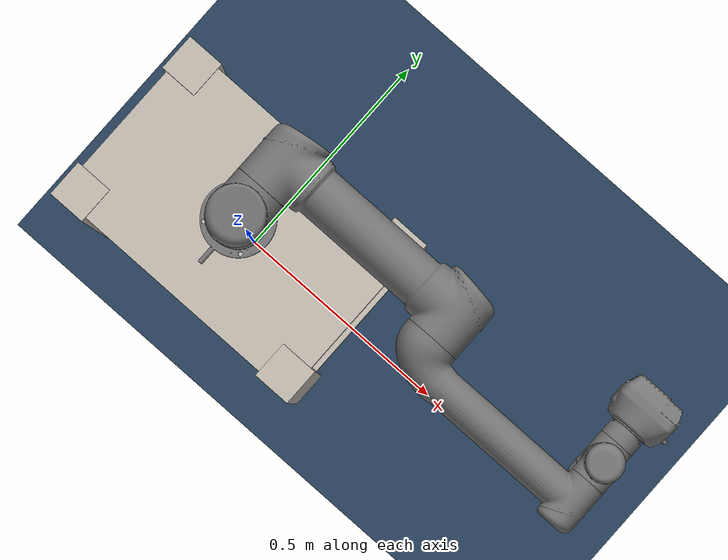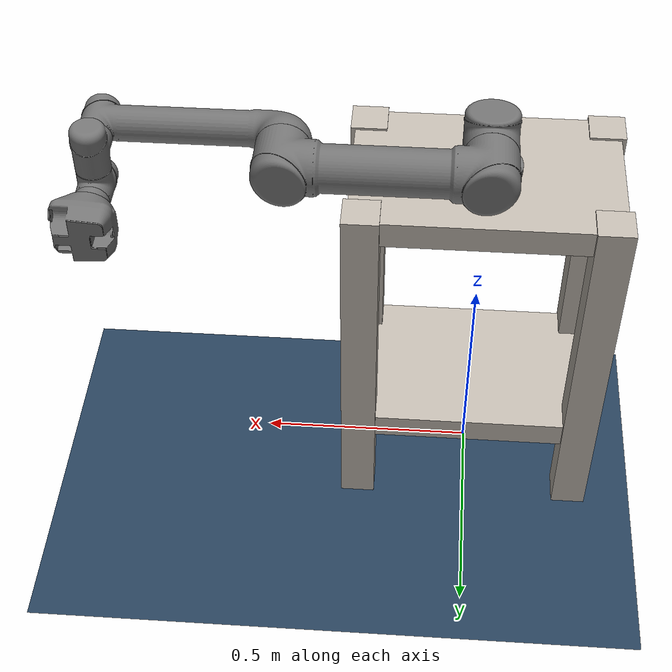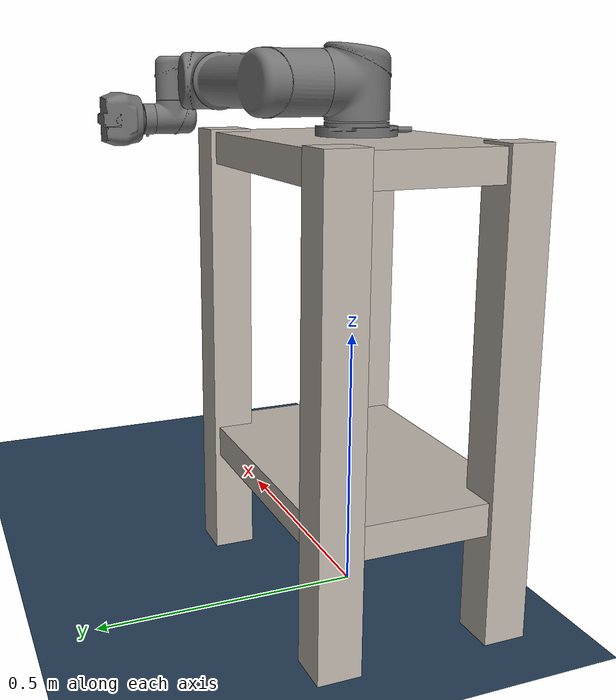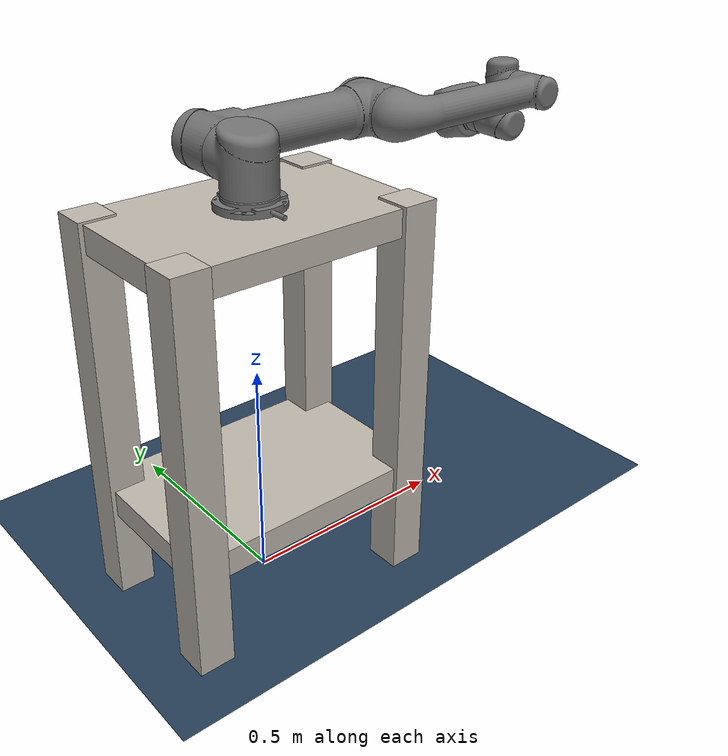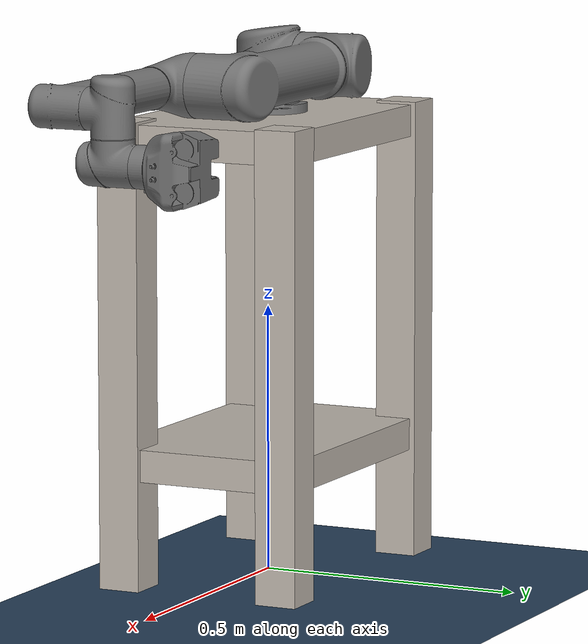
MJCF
<!--Link  MuJoCo modeling: http://www.mujoco.org/book/modeling.html-->

<mujoco model="ur5gripper">
    <compiler angle="radian"
              inertiafromgeom="false"
              texturedir="textures/"
              meshdir="mesh/visual/"/>
    <!--angle设置角度单位
    inertiafromgeom选择每个物体的关系和质量由其附着在其上的几何图形推断出来，覆盖惯性元件指定的任何值
    texturedir与meshdir指明文件路径-->
    <option timestep="2e-3"
            iterations="10"
            tolerance="1e-10"
            impratio="20"/>
    <!--timestep仿真时间不长
    iterations约束解算器最大迭代次数
    tolerance用于提前终止迭代器的阈值
    impratio摩擦力与正交力之比，也就是摩擦系数
    -->
    <size njmax="600"
          nconmax="150"
          nstack="300000"/>
    <!--njmax约束雅可比矩阵的最大行数
    nconmax可处理的最大接触点，包括有摩擦与无摩擦
    nstack预分配堆栈大小
    -->
    <default>
        <site rgba="0.8 0.6 0.7 0.3" type="ellipsoid" group="3"/>
        <geom contype='1' conaffinity='1' condim='4'  margin="1e-3" solref=".01 1" solimp=".99 .99 .01" />
        <joint armature="0.01" damping=".1"/>
        <default class="UR5">
            <joint damping='65'/>
        </default>
        <default class="UR5e">
            <joint damping='45'/>
        </default>
        <default class="GRIPPER">
            <joint damping='5'/>
        </default>
    </default>
    <!--site兴趣点，用于放东西
    geom用于链接到body，确定实体的外观和碰撞属性,contype与conaffinity用于碰撞，
    joint里面添加了转子惯性以及阻尼
    -->
    <visual>
        <map fogstart="3" fogend="5" znear="0.05"/>
        <quality shadowsize="2048"/>
        <scale framelength="0.1"
               framewidth="0.005"
               contactwidth="0.1"
               contactheight="0.005"
               forcewidth="0.01"
               />
    </visual>
    <!--map影响其视觉效果
    quality为渲染质量
    scale为装饰对象空间范围
    -->
    <!--Assets-->
    <asset>
        <!--Meshes-->
        <mesh name="base"           file="base.stl"     />
        <mesh name="shoulder"       file="shoulder.stl" />
        <mesh name="upperarm"       file="upperarm.stl" />
        <mesh name="forearm"        file="forearm.stl"  />
        <mesh name="wrist1"         file="wrist1.stl"   />
        <mesh name="wrist2"         file="wrist2.stl"   />
        <mesh name="wrist3"         file="wrist3.stl"   />
        <mesh name="gripperpalm"    file="palm.STL"     />
        <mesh name="link_0"         file="link_0.STL"   />
        <mesh name="link_1"         file="link_1.STL"   />
        <mesh name="link_2"         file="link_2.STL"   />
        <mesh name="link_3"         file="link_3.STL"   />
        <!--Textures-->
        <texture name="ur5_tex"     type="2d"       builtin="flat" height="32" width="32" rgb1="0.45 0.45 0.45" />
        <texture name="gripper_tex" type="2d"       builtin="flat" height="32" width="32" rgb1="0.45 0.45 0.45" rgb2="0 0 0"/>
        <texture name="bench_tex"   type="2d"       builtin="flat" height="32" width="32" rgb1="0.7 0.7 0.7" />
        <texture name="sky_tex"     type="skybox"   builtin="gradient" width="100" height="100" rgb1="1 1 1" rgb2="0.3 0.3 0.8" />
        <texture name="texgeom"     type="cube"     builtin="flat" mark="cross" width="127" height="1278" rgb1="0.8 0.6 0.4" rgb2="0.8 0.6 0.4" markrgb="1 1 1" random="0.01" />
        <texture name="floor_tex"   type="2d"        builtin="checker" rgb1=".2 .3 .4" rgb2=".1 .2 .3" width="100" height="100" />
        <texture name="wood"        type="cube"     file="wood2.png"/>
        <texture name="metal"        type="cube"     file="metal2.png"/>
        <!--Materials-->
        <material name="ur5_mat"        texture="ur5_tex"   shininess="0.9" specular="0.75" reflectance="0.3"/>
        <material name="gripper_mat"    texture="gripper_tex"   shininess="0.9" specular="0.75" reflectance="0.4"/>
        <material name='floor_mat'      texture="floor_tex"  shininess="0.8" texrepeat="10 10" specular="0.7"  reflectance="0.5" />
        <material name='geom'           texture="texgeom"   texuniform="true" />
        <material name="bench_mat"      texture="metal"   shininess="0.1" specular="0.5" reflectance="0.2"/>
        <material name="tablecube"      texture="wood" rgba=".8 .8 .8 1"/>
    </asset>
    <!--文件指定、材料-->
    <!--Contacts-->
    <contact>
        <exclude body1="box_link" body2="base_link"/>
		<exclude body1="base_link" body2="shoulder_link"/>
		<exclude body1="shoulder_link" body2="upper_arm_link"/>
        <exclude body1="upper_arm_link" body2="forearm_link"/>
		<exclude body1="forearm_link" body2="wrist_1_link"/>
		<exclude body1="wrist_1_link" body2="wrist_2_link"/>
        <exclude body1="wrist_2_link" body2="wrist_3_link"/>
        <exclude body1="wrist_3_link" body2="gripperpalm"/>
        <exclude body1="ee_link" body2="wrist_3_link"/>
        <exclude body1="ee_link" body2="gripperpalm"/>
    </contact>
    <!--碰撞检测中排除的实体对，即实际相连的物体-->
    <!--MODEL DESCRIPTION-->
    <worldbody>
        <!--Lighting parameters-->
        <light name="light3" mode="targetbody" target="box_link" directional="true" pos="1 1 3" />
        <!--Camera parameters-->
        <camera name="main1" mode="fixed" target="gripperpalm" pos="2 2 2.7" axisangle="2 2 -2 1"/>
        <!--Floor Property-->
        <geom name='floor' material="floor_mat" pos='0 0 0' size='2.5 2.5 0.1'  type='plane' />
        <!--mocap-->
        <!--Robot UR5-->
        <body name="box_link" pos="0 0 0.435">
            <!--bench-->
            <geom size=".29 .19 .03" pos ="0 0 0.4" type="box" material="bench_mat"/>
            <geom size=".29 .19 .03" pos ="0 0 -0.2" type="box" material="bench_mat"/>
            <geom size=".04 .04 .435" pos =".26 .16 0" type="box" material="bench_mat"/>
            <geom size=".04 .04 .435" pos ="-.26 .16 0" type="box" material="bench_mat"/>
            <geom size=".04 .04 .435" pos =".26 -.16 0" type="box" material="bench_mat"/>
            <geom size=".04 .04 .435" pos ="-.26 -.16 0" type="box" material="bench_mat"/>
            <inertial pos="0 0 0" mass="1000" diaginertia="0 0 0" />
            <!--ur5-->
            <body name="base_link" pos="0 0 0.435">
                <inertial pos="0 0 0" quat="0.5 0.5 -0.5 0.5" mass="4" diaginertia="0.0072 0.00443333 0.00443333" />
                <geom type="mesh"  mesh="base" material="ur5_mat"/>
                <body name="shoulder_link" pos="0 0 0.089159">
                    <inertial pos="0 0 0" mass="3.7" diaginertia="0.0102675 0.0102675 0.00666" />
                    <joint name="shoulder_pan_joint" class="UR5" pos="0 0 0" axis="0 0 1" limited="true" range="-3.14159 3.14159" />
                    <geom type="mesh"  mesh="shoulder" material="ur5_mat"/>
                    <body name="upper_arm_link" pos="0 0.13585 0" quat="0.707107 0 0.707107 0">
                        <inertial pos="0 0 0.28" mass="8.393" diaginertia="0.226891 0.226891 0.0151074" />
                        <joint name="shoulder_lift_joint" class="UR5" pos="0 0 0" axis="0 1 0" limited="true" range="-3.14159 0" /> <!--Range= -3.14159 3.14159-->
                        <geom type="mesh"  mesh="upperarm" material="ur5_mat"/>
                        <body name="forearm_link" pos="0 -0.1197 0.425">
                            <inertial pos="0 0 0.25" mass="2.275" diaginertia="0.0494433 0.0494433 0.004095" />
                            <joint name="elbow_joint" class="UR5" pos="0 0 0" axis="0 1 0" limited="true" range="-3.14159 3.14159" />
                            <geom type="mesh"  mesh="forearm" material="ur5_mat"/>
                            <body name="wrist_1_link" pos="0 0 0.39225" quat="0.707107 0 0.707107 0">
                                <inertial pos="0 0 0" quat="0.5 0.5 -0.5 0.5" mass="1.219" diaginertia="0.21942 0.111173 0.111173" />
                                <joint name="wrist_1_joint" class="UR5e" pos="0 0 0" axis="0 1 0" limited="true" range="-3.14159 3.14159" />
                                <geom type="mesh"  mesh="wrist1" material="ur5_mat"/>
                                <body name="wrist_2_link" pos="0 0.093 0">
                                    <inertial pos="0 0 0" quat="0.5 0.5 -0.5 0.5" mass="1.219" diaginertia="0.21942 0.111173 0.111173" />
                                    <joint name="wrist_2_joint" class="UR5e" pos="0 0 0" axis="0 0 1" limited="true" range="-3.14159 3.14159" />
                                    <geom type="mesh"  mesh="wrist2" material="ur5_mat"/>
                                    <body name="wrist_3_link" pos="0 0 0.09465">
                                        <inertial pos="0 0 0" quat="0.5 0.5 -0.5 0.5" mass="0.1879" diaginertia="0.033822 0.0171365 0.0171365" />
                                        <joint name="wrist_3_joint" class="UR5e" pos="0 0 0" axis="0 1 0" limited="true" range="-3.14159 3.14159" />
                                        <geom type="mesh"  mesh="wrist3" material="ur5_mat"/>
                                        <body name="ee_link" pos="0 0.0823 0" quat="0.707107 0 0 0.707107">
                                            <inertial pos="-0.01 0 0" mass="0.001" diaginertia="1.66667e-08 1.66667e-08 1.66667e-08" />
                                            <geom size="0.005 0.005 0.005" pos="-0.01 0 0" type="box" />
                                        </body>
                                        <!--GRIPPER-->
                                        <body name="tool0" pos="0 0.0823 0" quat="0.707107 -0.707107 0 0">
                                            <inertial pos="0 0.0823 0" quat="0.707107 -0.707107 0 0" mass="0" diaginertia="0 0 0" />
                                            <body name="gripperpalm" pos="0 0 0.0423" quat="0.707107 0.707107 0 0">
                                                <site name="gripperpalm" pos="0 0.05 0" size="0.035 0.0055 0.035"/>
                                                <inertial pos="0 0 0" mass="1.3" diaginertia="0.0035 0.0035 0.0035" />
                                                <geom type="mesh"  mesh="gripperpalm" material="gripper_mat"/>
                                            </body>
                                        </body>
                                    </body>
                                </body>
                            </body>
                        </body>
                    </body>
                </body>
                <body name="base" pos="0 0 0" quat="1.7949e-09 0 0 -1">
                    <inertial pos="0 0 0" quat="1.7949e-09 0 0 -1" mass="0" diaginertia="0 0 0" />
                </body>
            </body>
        </body>
    </worldbody>

    <!--手指剪刀运动的形成，在1号手指上加一个驱动器，在2号手指上面加约束使两个运动量相反-->
    <!--ACTUATORS-->
    <actuator>
        <!--UR5-->

        <motor name='shoulder_pan_T' ctrllimited="true" ctrlrange="-2 2" joint='shoulder_pan_joint' gear="101"/> <!--range -150 150-->
        <motor name='shoulder_lift_T' ctrllimited="true" ctrlrange="-2 2" joint='shoulder_lift_joint' gear="101"/>
        <motor name='forearm_T' ctrllimited="true" ctrlrange="-2 2" joint='elbow_joint' gear="101" />
        <motor name='wrist_1_T' ctrllimited="true" ctrlrange="-1 1" joint='wrist_1_joint' gear="101"/>  <!--range -28 28-->
        <motor name='wrist_2_T' ctrllimited="true" ctrlrange="-1 1" joint='wrist_2_joint' gear="101"/>
        <motor name='wrist_3_T' ctrllimited="true" ctrlrange="-1 1" joint='wrist_3_joint' gear="101"/>

        <!--Gripper-->

    </actuator>

    <sensor>
        <touch name="gripperpalm_frc" 		site="gripperpalm"/>

    </sensor>
</mujoco>
